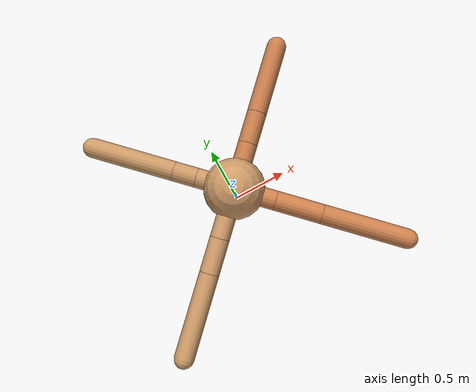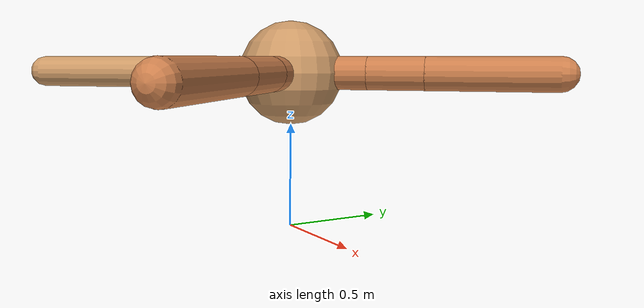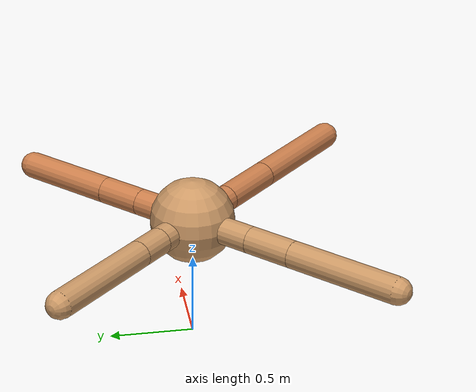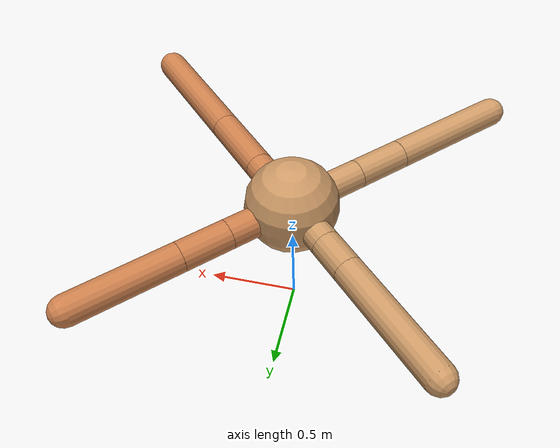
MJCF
<mujoco model="ant">
  <compiler angle="degree" coordinate="local" inertiafromgeom="true" />
  <option integrator="RK4" timestep="0.01" />
  <custom>
    <numeric data="0.0 0.0 0.55 1.0 0.0 0.0 0.0 0.0 1.0 0.0 -1.0 0.0 -1.0 0.0 1.0" name="init_qpos" />
  </custom>
  <default>
    <joint armature="1" damping="1" limited="true" />
    <geom conaffinity="0" condim="3" density="5.0" friction="1.5 0.1 0.1" margin="0.01" rgba="0.8 0.6 0.4 1" />
  </default>
  <worldbody>
    <body name="torso" pos="0 0 0.75">
      <geom name="torso_geom" pos="0 0 0" size="0.25" type="sphere" />

      <body name="front_left_leg" pos="0 0 0">
        <geom fromto="0.0 0.0 0.0 0.2654703996288484 0.2654703996288484 0.0" name="aux_1_geom" size="0.08" type="capsule" rgba=".8 .5 .3 1" />
        <body name="aux_1" pos="0.2654703996288484 0.2654703996288484 0.0">
          <joint axis="0 0 1" name="hip_1" pos="0.0 0.0 0.0" range="-40 40" type="hinge" />
          <geom fromto="0.0 0.0 0.0 0.1876138697562989 0.1876138697562989 0.0" name="left_leg_geom" size="0.08" type="capsule" rgba=".8 .5 .3 1" />
          <body pos="0.1876138697562989 0.1876138697562989 0.0" name="front_left_foot">
            <joint axis="-1 1 0" name="ankle_1" pos="0.0 0.0 0.0" range="30 100" type="hinge" />
            <geom fromto="0.0 0.0 0.0 0.4080448596428699 0.4080448596428699 0.0" name="left_ankle_geom" size="0.08" type="capsule" rgba=".8 .5 .3 1" />
          </body>
        </body>
      </body>
      <body name="front_right_leg" pos="0 0 0">
        <geom fromto="0.0 0.0 0.0 -0.22131013639369695 0.22131013639369695 0.0" name="aux_2_geom" size="0.08" type="capsule" />
        <body name="aux_2" pos="-0.22131013639369695 0.22131013639369695 0.0">
          <joint axis="0 0 1" name="hip_2" pos="0.0 0.0 0.0" range="-40 40" type="hinge" />
          <geom fromto="0.0 0.0 0.0 -0.13307563555709154 0.13307563555709154 0.0" name="right_leg_geom" size="0.08" type="capsule" />
          <body pos="-0.13307563555709154 0.13307563555709154 0.0" name="front_right_foot">
            <joint axis="1 1 0" name="ankle_2" pos="0.0 0.0 0.0" range="-100 -30" type="hinge" />
            <geom fromto="0.0 0.0 0.0 -0.4808114510655328 0.4808114510655328 0.0" name="right_ankle_geom" size="0.08" type="capsule" />
          </body>
        </body>
      </body>
      <body name="left_back_leg" pos="0 0 0">
        <geom fromto="0.0 0.0 0.0 -0.29147514369985184 -0.29147514369985184 0.0" name="aux_3_geom" size="0.08" type="capsule" />
        <body name="aux_3" pos="-0.29147514369985184 -0.29147514369985184 0.0">
          <joint axis="0 0 1" name="hip_3" pos="0.0 0.0 0.0" range="-40 40" type="hinge" />
          <geom fromto="0.0 0.0 0.0 -0.20099913550761828 -0.20099913550761828 0.0" name="back_leg_geom" size="0.08" type="capsule" />
          <body pos="-0.20099913550761828 -0.20099913550761828 0.0" name="left_back_foot">
            <joint axis="-1 1 0" name="ankle_3" pos="0.0 0.0 0.0" range="-100 -30" type="hinge" />
            <geom fromto="0.0 0.0 0.0 -0.47776034072399814 -0.47776034072399814 0.0" name="third_ankle_geom" size="0.08" type="capsule" />
          </body>
        </body>
      </body>
      <body name="right_back_leg" pos="0 0 0">
        <geom fromto="0.0 0.0 0.0 0.240086767408059 -0.240086767408059 0.0" name="aux_4_geom" size="0.08" type="capsule" rgba=".8 .5 .3 1" />
        <body name="aux_4" pos="0.240086767408059 -0.240086767408059 0.0">
          <joint axis="0 0 1" name="hip_4" pos="0.0 0.0 0.0" range="-40 40" type="hinge" />
          <geom fromto="0.0 0.0 0.0 0.27016527522612205 -0.27016527522612205 0.0" name="rightback_leg_geom" size="0.08" type="capsule" rgba=".8 .5 .3 1" />
          <body pos="0.27016527522612205 -0.27016527522612205 0.0" name="right_back_foot">
            <joint axis="1 1 0" name="ankle_4" pos="0.0 0.0 0.0" range="30 100" type="hinge" />
            <geom fromto="0.0 0.0 0.0 0.49580247736753535 -0.49580247736753535 0.0" name="fourth_ankle_geom" size="0.08" type="capsule" rgba=".8 .5 .3 1" />
          </body>
        </body>
      </body>
    </body>
  </worldbody>
  <actuator>
    <motor ctrllimited="true" ctrlrange="-1.0 1.0" joint="hip_4" gear="150" />
    <motor ctrllimited="true" ctrlrange="-1.0 1.0" joint="ankle_4" gear="150" />
    <motor ctrllimited="true" ctrlrange="-1.0 1.0" joint="hip_1" gear="150" />
    <motor ctrllimited="true" ctrlrange="-1.0 1.0" joint="ankle_1" gear="150" />
    <motor ctrllimited="true" ctrlrange="-1.0 1.0" joint="hip_2" gear="150" />
    <motor ctrllimited="true" ctrlrange="-1.0 1.0" joint="ankle_2" gear="150" />
    <motor ctrllimited="true" ctrlrange="-1.0 1.0" joint="hip_3" gear="150" />
    <motor ctrllimited="true" ctrlrange="-1.0 1.0" joint="ankle_3" gear="150" />
  </actuator>
</mujoco>
